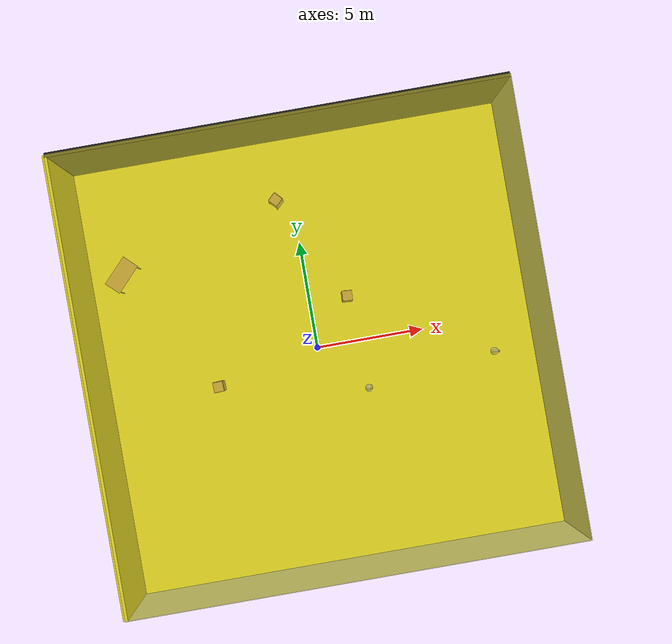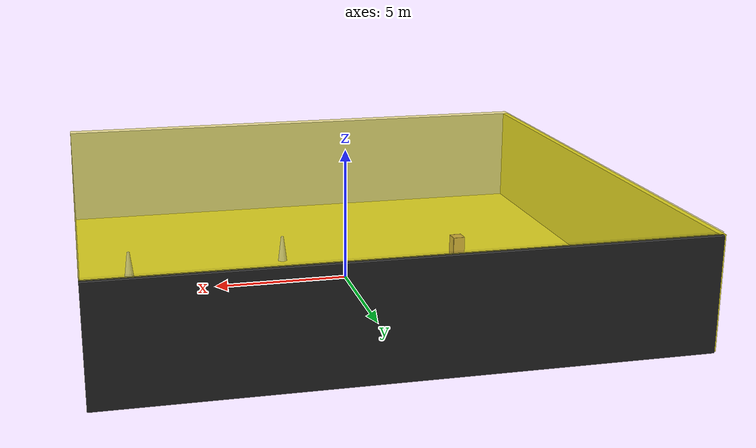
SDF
<sdf version="1.4">
 <world name="default">
  <physics type="ode">
   <max_step_size>0.001</max_step_size>
   <real_time_factor>1</real_time_factor>
   <real_time_update_rate>1000</real_time_update_rate>
   <gravity>0 0 -9.8</gravity>
  </physics>
  <scene><ambient>0.4 0.4 0.4 1</ambient><background>0.7 0.7 0.7 1</background><shadows>1</shadows></scene>
  <model name="Surrounding">
   <static>1</static>
   <link name="Ceiling">
    <collision name="Ceiling_Collision"><geometry><box><size>20 20 0.1</size></box></geometry></collision>
    <visual name="Ceiling_Visual">
     <geometry><box><size>20 20 0.1</size></box></geometry>
     <material>
      <script>
       <uri>file://media/materials/scripts/gazebo.material</uri>
       <name>Gazebo/YellowTransparent</name>
      </script>
     </material>
    </visual>
    <pose>0 0 4.05 0 0 0</pose>
   </link>
   <link name="Wall_South">
    <collision name="Wall_South_Collision">
     <geometry><box><size>20 0 4</size></box></geometry>
     <pose>0 0 2 0 -0 0</pose>
    </collision>
    <visual name="Wall_South_Visual">
     <pose>0 0 2 0 -0 0</pose>
     <geometry><box><size>20 0 4</size></box></geometry>
     <material>
      <script><uri>file://media/materials/scripts/gazebo.material</uri><name>Gazebo/LightOn</name></script>
     </material>
    </visual>
    <velocity_decay><linear>0</linear><angular>0</angular></velocity_decay>
    <pose>0 -10 0 0 -0 0</pose>
   </link>
   <link name="Wall_East">
    <collision name="Wall_21_Collision">
     <geometry><box><size>20 0 4</size></box></geometry>
     <pose>0 0 2 0 -0 0</pose>
    </collision>
    <visual name="Wall_21_Visual">
     <pose>0 0 2 0 -0 0</pose>
     <geometry><box><size>20 0 4</size></box></geometry>
     <material>
      <script><uri>file://media/materials/scripts/gazebo.material</uri><name>Gazebo/GreyGradientSky</name></script>
     </material>
    </visual>
    <velocity_decay><linear>0</linear><angular>0</angular></velocity_decay>
    <pose>10 0 0 0 -0 1.5708</pose>
   </link>
   <link name="Wall_North">
    <collision name="Wall_22_Collision">
     <geometry><box><size>20 0.2 4</size></box></geometry>
     <pose>0 0 2 0 -0 0</pose>
    </collision>
    <visual name="Wall_22_Visual">
     <pose>0 0 2 0 -0 0</pose>
     <geometry><box><size>20 0.2 4</size></box></geometry>
     <material>
      <script><uri>file://media/materials/scripts/gazebo.material</uri><name>Gazebo/FlatBlack</name></script>
     </material>
    </visual>
    <velocity_decay><linear>0</linear><angular>0</angular></velocity_decay>
    <pose>0 10 0 0 -0 0</pose>
   </link>
   <link name="Wall_West">
    <collision name="Wall_23_Collision">
     <geometry><box><size>20 0.2 4</size></box></geometry>
     <pose>0 0 2 0 -0 0</pose>
    </collision>
    <visual name="Wall_23_Visual">
     <pose>0 0 2 0 -0 0</pose>
     <geometry><box><size>20 0.2 4</size></box></geometry>
     <material>
      <script><uri>file://media/materials/scripts/gazebo.material</uri><name>Gazebo/YellowGlow</name></script>
     </material>
    </visual>
    <velocity_decay><linear>0</linear><angular>0</angular></velocity_decay>
    <pose>-10 0 0 0 0 -1.5708</pose>
   </link>
   <link name="Ground_link">
    <collision name="collision">
     <pose>0 0 .05 0 -0 0</pose>
     <geometry><box><size>20 20 0.1</size></box></geometry>
    </collision>
    <visual name="visual">
     <pose>0 0 .05 0 -0 0</pose>
     <geometry><box><size>20 20 0.1</size></box></geometry>
     <material>
      <script><uri>file://media/materials/scripts/gazebo.material</uri><name>Gazebo/YellowGlow</name></script>
     </material>
    </visual>
   </link>
   <static>1</static>
  </model>
  <spherical_coordinates>
   <surface_model>EARTH_WGS84</surface_model>
   <latitude_deg>0</latitude_deg>
   <longitude_deg>0</longitude_deg>
   <elevation>0</elevation>
   <heading_deg>0</heading_deg>
  </spherical_coordinates>
  <light name="lightball_0" type="diffuse">
   <diffuse>0.8 0.8 0.8 1</diffuse>
   <specular>0.2 0.2 0.2 1</specular>
   <attenuation>
    <range>100</range>
    <constant>0.7</constant>
    <linear>0.01</linear>
    <quadratic>0.001</quadratic>
   </attenuation>
   <direction>-0.5 0.1 -0.9</direction>
   <pose>-0.0929969008969 -5.2848099731 3.23373837189 0 0 0</pose>
  </light>
  <light name="lightball_1" type="diffuse">
   <diffuse>0.8 0.8 0.8 1</diffuse>
   <specular>0.2 0.2 0.2 1</specular>
   <attenuation>
    <range>100</range>
    <constant>0.7</constant>
    <linear>0.01</linear>
    <quadratic>0.001</quadratic>
   </attenuation>
   <direction>-0.5 0.1 -0.9</direction>
   <pose>-4.62593357136 0.619060571356 0.853722449079 0 0 0</pose>
  </light>
  <light name="lightball_2" type="diffuse">
   <diffuse>0.8 0.8 0.8 1</diffuse>
   <specular>0.2 0.2 0.2 1</specular>
   <attenuation>
    <range>100</range>
    <constant>0.7</constant>
    <linear>0.01</linear>
    <quadratic>0.001</quadratic>
   </attenuation>
   <direction>-0.5 0.1 -0.9</direction>
   <pose>3.44508646568 0.126906075967 1.89540116272 0 0 0</pose>
  </light>
  <light name="lightball_3" type="diffuse">
   <diffuse>0.8 0.8 0.8 1</diffuse>
   <specular>0.2 0.2 0.2 1</specular>
   <attenuation>
    <range>100</range>
    <constant>0.7</constant>
    <linear>0.01</linear>
    <quadratic>0.001</quadratic>
   </attenuation>
   <direction>-0.5 0.1 -0.9</direction>
   <pose>5.63713314304 8.30142558437 2.35038411291 0 0 0</pose>
  </light>
  <light name="lightball_4" type="diffuse">
   <diffuse>0.8 0.8 0.8 1</diffuse>
   <specular>0.2 0.2 0.2 1</specular>
   <attenuation>
    <range>100</range>
    <constant>0.7</constant>
    <linear>0.01</linear>
    <quadratic>0.001</quadratic>
   </attenuation>
   <direction>-0.5 0.1 -0.9</direction>
   <pose>2.85078503064 -0.380159744622 3.43465670575 0 0 0</pose>
  </light>
  <light name="lightball_5" type="diffuse">
   <diffuse>0.8 0.8 0.8 1</diffuse>
   <specular>0.2 0.2 0.2 1</specular>
   <attenuation>
    <range>100</range>
    <constant>0.7</constant>
    <linear>0.01</linear>
    <quadratic>0.001</quadratic>
   </attenuation>
   <direction>-0.5 0.1 -0.9</direction>
   <pose>7.66058089677 0.0762714056207 2.73378251415 0 0 0</pose>
  </light>
  <light name="lightball_6" type="diffuse">
   <diffuse>0.8 0.8 0.8 1</diffuse>
   <specular>0.2 0.2 0.2 1</specular>
   <attenuation>
    <range>100</range>
    <constant>0.7</constant>
    <linear>0.01</linear>
    <quadratic>0.001</quadratic>
   </attenuation>
   <direction>-0.5 0.1 -0.9</direction>
   <pose>-2.98252766371 -2.70789913945 2.31605724972 0 0 0</pose>
  </light>
  <light name="lightball_7" type="diffuse">
   <diffuse>0.8 0.8 0.8 1</diffuse>
   <specular>0.2 0.2 0.2 1</specular>
   <attenuation>
    <range>100</range>
    <constant>0.7</constant>
    <linear>0.01</linear>
    <quadratic>0.001</quadratic>
   </attenuation>
   <direction>-0.5 0.1 -0.9</direction>
   <pose>1.53460066028 -6.0726548101 3.13654205362 0 0 0</pose>
  </light>
  <light name="lightball_8" type="diffuse">
   <diffuse>0.8 0.8 0.8 1</diffuse>
   <specular>0.2 0.2 0.2 1</specular>
   <attenuation>
    <range>100</range>
    <constant>0.7</constant>
    <linear>0.01</linear>
    <quadratic>0.001</quadratic>
   </attenuation>
   <direction>-0.5 0.1 -0.9</direction>
   <pose>2.7838653849 2.43295183693 0.518438963499 0 0 0</pose>
  </light>
  <include><uri>model://table</uri><pose>-8.29420000731 4.82496307726 0 0 0 0.814422585778</pose></include>
  <include><uri>model://cabinet</uri><pose>-4.80790828536 -0.99260057591 0 0 0 0.037818198444</pose></include>
  <include><uri>model://cabinet</uri><pose>-0.748465960828 7.01427997503 0 0 0 0.764284993234</pose></include>
  <include>
   <uri>model://construction_cone</uri>
   <pose>2.05295075958 -2.26755481067 0 0 0 1.21710739863</pose>
  </include>
  <include><uri>model://cabinet</uri><pose>1.74273681593 2.11189436282 0 0 0 3.0728579763</pose></include>
  <include>
   <uri>model://construction_cone</uri>
   <pose>8.12885070205 -1.58448407478 0 0 0 0.462389290465</pose>
  </include>
 </world>
</sdf>

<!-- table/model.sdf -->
<sdf version="1.5">
  <model name="table">
    <static>true</static>
    <link name="link">
      <collision name="surface">
        <pose>0 0 1.0 0 0 0</pose>
        <geometry>
          <box>
            <size>1.5 0.8 0.03</size>
          </box>
        </geometry>
        <surface>
          <friction>
            <ode>
              <mu>0.6</mu>
              <mu2>0.6</mu2>
            </ode>
          </friction>
        </surface>
      </collision>
      <visual name="visual1">
        <pose>0 0 1.0 0 0 0</pose>
        <geometry>
          <box>
            <size>1.5 0.8 0.03</size>
          </box>
        </geometry>
        <material>
          <script>
            <uri>model://media/materials/scripts/gazebo.material</uri>
            <name>Gazebo/Wood</name>
          </script>
        </material>
      </visual>
      <collision name="front_left_leg">
        <pose>0.68 0.38 0.5 0 0 0</pose>
        <geometry>
          <cylinder>
            <radius>0.02</radius>
            <length>1.0</length>
          </cylinder>
        </geometry>
      </collision>
      <visual name="front_left_leg">
        <pose>0.68 0.38 0.5 0 0 0</pose>
        <geometry>
          <cylinder>
            <radius>0.02</radius>
            <length>1.0</length>
          </cylinder>
        </geometry>
        <material>
          <script>
            <uri>model://media/materials/scripts/gazebo.material</uri>
            <name>Gazebo/Grey</name>
          </script>
        </material>
      </visual>
      <collision name="front_right_leg">
        <pose>0.68 -0.38 0.5 0 0 0</pose>
        <geometry>
          <cylinder>
            <radius>0.02</radius>
            <length>1.0</length>
          </cylinder>
        </geometry>
      </collision>
      <visual name="front_right_leg">
        <pose>0.68 -0.38 0.5 0 0 0</pose>
        <geometry>
          <cylinder>
            <radius>0.02</radius>
            <length>1.0</length>
          </cylinder>
        </geometry>
        <material>
          <script>
            <uri>model://media/materials/scripts/gazebo.material</uri>
            <name>Gazebo/Grey</name>
          </script>
        </material>
      </visual>
      <collision name="back_right_leg">
        <pose>-0.68 -0.38 0.5 0 0 0</pose>
        <geometry>
          <cylinder>
            <radius>0.02</radius>
            <length>1.0</length>
          </cylinder>
        </geometry>
      </collision>
      <visual name="back_right_leg">
        <pose>-0.68 -0.38 0.5 0 0 0</pose>
        <geometry>
          <cylinder>
            <radius>0.02</radius>
            <length>1.0</length>
          </cylinder>
        </geometry>
        <material>
          <script>
            <uri>model://media/materials/scripts/gazebo.material</uri>
            <name>Gazebo/Grey</name>
          </script>
        </material>
      </visual>
      <collision name="back_left_leg">
        <pose>-0.68 0.38 0.5 0 0 0</pose>
        <geometry>
          <cylinder>
            <radius>0.02</radius>
            <length>1.0</length>
          </cylinder>
        </geometry>
      </collision>
      <visual name="back_left_leg">
        <pose>-0.68 0.38 0.5 0 0 0</pose>
        <geometry>
          <cylinder>
            <radius>0.02</radius>
            <length>1.0</length>
          </cylinder>
        </geometry>
        <material>
          <script>
            <uri>model://media/materials/scripts/gazebo.material</uri>
            <name>Gazebo/Grey</name>
          </script>
        </material>
      </visual>
    </link>
  </model>
</sdf>

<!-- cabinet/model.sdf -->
<sdf version="1.5">
  <model name="cabinet">
    <static>true</static>
    <link name="cabinet_bottom_plate">
      <inertial>
        <pose>0 0 -1 0 0 0</pose>
        <inertia>
          <ixx>2.050000</ixx>
          <ixy>0</ixy>
          <ixz>0</ixz>
          <iyy>2.050000</iyy>
          <iyz>0</iyz>
          <izz>2.050000</izz>
        </inertia>
        <mass>25.000000</mass>
      </inertial>
      <collision name="cabinet_bottom_plate_geom">
        <pose>0 0 0.010000 0 0 0</pose>
        <geometry>
          <box>
            <size>0.450000 0.450000 0.020000</size>
          </box>
        </geometry>
      </collision>
      <visual name="cabinet_bottom_plate_geom_visual">
        <pose>0 0 0.010000 0 0 0</pose>
        <geometry>
          <box>
            <size>0.450000 0.450000 0.020000</size>
          </box>
        </geometry>
        <material>
          <script>
            <uri>model://media/materials/scripts/gazebo.material</uri>
            <name>Gazebo/Wood</name>
          </script>
        </material>
      </visual>
      <collision name="cabinet_bottom_plate_geom_cabinet_back_plate">
        <pose>0.235000 0 0.510000 0 0 0</pose>
        <geometry>
          <box>
            <size>0.020000 0.450000 1.020000</size>
          </box>
        </geometry>
      </collision>
      <visual name="cabinet_bottom_plate_geom_cabinet_back_plate_visual">
        <pose>0.235000 0 0.510000 0 0 0</pose>
        <geometry>
          <box>
            <size>0.020000 0.450000 1.020000</size>
          </box>
        </geometry>
        <material>
          <script>
            <uri>model://media/materials/scripts/gazebo.material</uri>
            <name>Gazebo/Wood</name>
          </script>
        </material>
      </visual>
      <collision name="cabinet_bottom_plate_geom_cabinet_left_plate">
        <pose>0 0.235000 0.510000 0 0 0</pose>
        <geometry>
          <box>
            <size>0.450000 0.020000 1.020000</size>
          </box>
        </geometry>
      </collision>
      <visual name="cabinet_bottom_plate_geom_cabinet_left_plate_visual">
        <pose>0 0.235000 0.510000 0 0 0</pose>
        <geometry>
          <box>
            <size>0.450000 0.020000 1.020000</size>
          </box>
        </geometry>
        <material>
          <script>
            <uri>model://media/materials/scripts/gazebo.material</uri>
            <name>Gazebo/Wood</name>
          </script>
        </material>
      </visual>
      <collision name="cabinet_bottom_plate_geom_cabinet_middle_plate">
        <pose>0 0 0.510000 0 0 0</pose>
        <geometry>
          <box>
            <size>0.450000 0.450000 0.020000</size>
          </box>
        </geometry>
      </collision>
      <visual name="cabinet_bottom_plate_geom_cabinet_middle_plate_visual">
        <pose>0 0 0.510000 0 0 0</pose>
        <geometry>
          <box>
            <size>0.450000 0.450000 0.020000</size>
          </box>
        </geometry>
        <material>
          <script>
            <uri>model://media/materials/scripts/gazebo.material</uri>
            <name>Gazebo/Wood</name>
          </script>
        </material>
      </visual>
      <collision name="cabinet_bottom_plate_geom_cabinet_right_plate">
        <pose>0 -0.235000 0.510000 0 0 0</pose>
        <geometry>
          <box>
            <size>0.450000 0.020000 1.020000</size>
          </box>
        </geometry>
      </collision>
      <visual name="cabinet_bottom_plate_geom_cabinet_right_plate_visual">
        <pose>0 -0.235000 0.510000 0 0 0</pose>
        <geometry>
          <box>
            <size>0.450000 0.020000 1.020000</size>
          </box>
        </geometry>
        <material>
          <script>
            <uri>model://media/materials/scripts/gazebo.material</uri>
            <name>Gazebo/Wood</name>
          </script>
        </material>
      </visual>
      <collision name="cabinet_bottom_plate_geom_cabinet_top_plate">
        <pose>0 0 1.010000 0 0 0</pose>
        <geometry>
          <box>
            <size>0.450000 0.450000 0.020000</size>
          </box>
        </geometry>
      </collision>
      <visual name="cabinet_bottom_plate_geom_cabinet_top_plate_visual">
        <pose>0 0 1.010000 0 0 0</pose>
        <geometry>
          <box>
            <size>0.450000 0.450000 0.020000</size>
          </box>
        </geometry>
        <material>
          <script>
            <uri>model://media/materials/scripts/gazebo.material</uri>
            <name>Gazebo/Wood</name>
          </script>
        </material>
      </visual>
    </link>
  </model>
</sdf>

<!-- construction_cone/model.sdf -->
<sdf version="1.5">
  <model name="Construction Cone">
    <link name="link">
      <collision name="collision">
        <geometry>
          <mesh>
            <scale>10 10 10</scale>
            <uri>file://isr-testbed/construction_cone/meshes/construction_cone.dae</uri>
          </mesh>
        </geometry>
      </collision>
      <visual name="visual">
        <geometry>
          <mesh>
            <scale>10 10 10</scale>
            <uri>file://isr-testbed/construction_cone/meshes/construction_cone.dae</uri>
          </mesh>
        </geometry>
      </visual>
    </link>
  </model>
</sdf>
